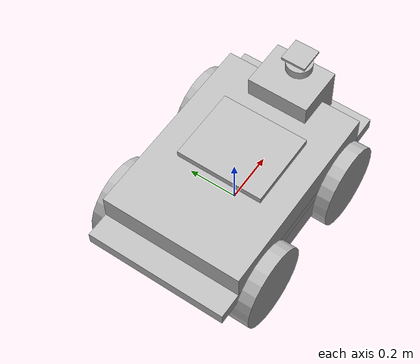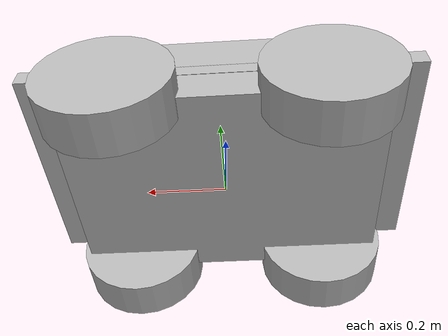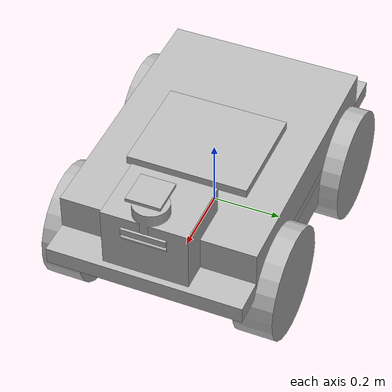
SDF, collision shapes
<?xml version='1.0' encoding='utf-8'?>
<sdf version="1.6">
  <model name="marble_husky_pan_tilt">
    <link name="base_link">
      <pose frame="">0 0 0 0 -0 0</pose>
      <inertial>
        <pose frame="">-0.000543 -0.084945 0.062329 0 -0 0</pose>
        <mass>46.064</mass>
        <inertia>
          <ixx>0.615397</ixx>
          <ixy>-0.0240585</ixy>
          <ixz>-0.120749</ixz>
          <iyy>1.75388</iyy>
          <iyz>-0.0028322</iyz>
          <izz>2.03641</izz>
        </inertia>
      </inertial>
      <collision name="base_link_collision">
        <pose frame="">0 0 0.12 0 0 0</pose>
        <geometry>
          <box>
            <size>0.9874 0.5709 0.05</size>
          </box>
        </geometry>
      </collision>
      <collision name="base_link_collision_bottom">
        <pose frame="">0 0 0.046 0 0 0</pose>
        <geometry>
          <box>
            <size>0.80 0.5709 0.095</size>
          </box>
        </geometry>
      </collision>
      <collision name="base_link_collision_1">
        <pose frame="">0 0 0.185625 0 -0 0</pose>
        <geometry>
          <box>
            <size>0.78992 0.5709 0.12375</size>
          </box>
        </geometry>
      </collision>
      <collision name="base_link_fixed_joint_lump__camera/camera_link_collision_1">
        <pose frame="pan_gimbal_link">0 0 0.05 0 0.0 0</pose>
        <geometry>
          <box>
            <size>0.0078 0.13 0.0192</size>
          </box>
        </geometry>
        <surface>
          <contact>
            <ode>
              <kp>1e+13</kp>
              <kd>1</kd>
            </ode>
          </contact>
          <friction>
            <ode>
              <mu2>1</mu2>
              <fdir1>0 0 0</fdir1>
            </ode>
          </friction>
        </surface>
      </collision>
      <collision name="base_link_fixed_joint_lump__camera/camera_link_collision_2">
        <pose frame="">0.478 0 0.285 0 -0 0</pose>
        <geometry>
          <box>
            <size>0.0078 0.13 0.0192</size>
          </box>
        </geometry>
        <surface>
          <contact>
            <ode>
              <kp>1e+13</kp>
              <kd>1</kd>
            </ode>
          </contact>
          <friction>
            <ode>
              <mu2>1</mu2>
              <fdir1>0 0 0</fdir1>
            </ode>
          </friction>
        </surface>
      </collision>
      <collision name="base_link_fixed_joint_lump__camera/camera_link_collision_3">
        <pose frame="">0.473 0 0.260 0 0.5236 0</pose>
        <geometry>
          <box>
            <size>0.0078 0.13 0.0192</size>
          </box>
        </geometry>
        <surface>
          <contact>
            <ode>
              <kp>1e+13</kp>
              <kd>1</kd>
            </ode>
          </contact>
          <friction>
            <ode>
              <mu2>1</mu2>
              <fdir1>0 0 0</fdir1>
            </ode>
          </friction>
        </surface>
      </collision>
      <collision name="base_link_fixed_joint_lump__velodyne_base_link_collision_6">
        <pose frame="">0.424 0 0.327 0 -0 0</pose>
        <geometry>
          <cylinder>
            <length>0.0717</length>
            <radius>0.0516</radius>
          </cylinder>
        </geometry>
      </collision>
      <collision name="base_link_fixed_joint_lump__velodyne_gimbal_plate_base_link_collision_7">
        <pose frame="">0.424 0 0.400 0 -0 0</pose>
        <geometry>
          <box>
            <size>0.1 0.1 0.01</size>
          </box>
        </geometry>
      </collision>
      <collision name="base_link_fixed_joint_lump__sensor_tower_8">
       <pose frame="">0.374 0 0.215 0 -0 0</pose>
        <geometry>
          <box>
            <size>0.2 0.25 0.225</size>
          </box>
        </geometry>
      </collision>
      <collision name="base_link_fixed_joint_lump__computer_block_9">
       <pose frame="">0.050 0 0.185 0 -0 0</pose>
        <geometry>
          <box>
            <size>0.30 0.355 0.175</size>
          </box>
        </geometry>
      </collision>
      <visual name="base_link_visual">
        <pose frame="">0 0 0 0 -0 0</pose>
        <geometry>
          <mesh>
            <scale>1 1 1</scale>
            <uri>meshes/base_link.dae</uri>
          </mesh>
        </geometry>
      </visual>
      <visual name="base_link_fixed_joint_lump__camera/camera_link_visual_1">
        <pose frame="">0.478 0 0.260 0 0.5236 0</pose>
        <geometry>
          <mesh>
            <uri>meshes/realsense.dae</uri>
          </mesh>
        </geometry>
      </visual>
      <visual name="base_link_fixed_joint_lump__camera/camera_link_visual_2">
        <pose frame="">0.478 0 0.285 0 -0 0</pose>
        <geometry>
          <mesh>
            <uri>meshes/realsense.dae</uri>
          </mesh>
        </geometry>
      </visual>
      <visual name="base_link_fixed_joint_lump__front_bumper_link_visual_3">
        <pose frame="">0.48 0 0.091 0 -0 0</pose>
        <geometry>
          <mesh>
            <scale>1 1 1</scale>
            <uri>meshes/bumper.dae</uri>
          </mesh>
        </geometry>
      </visual>
      <visual name="base_link_fixed_joint_lump__rear_bumper_link_visual_4">
        <pose frame="">-0.48 0 0.091 0 -0 3.14159</pose>
        <geometry>
          <mesh>
            <scale>1 1 1</scale>
            <uri>meshes/bumper.dae</uri>
          </mesh>
        </geometry>
      </visual>
      <visual name="base_link_fixed_joint_lump__top_chassis_link_visual_5">
        <pose frame="">0 0 0 0 -0 0</pose>
        <geometry>
          <mesh>
            <scale>1 1 1</scale>
            <uri>meshes/top_chassis.dae</uri>
          </mesh>
        </geometry>
      </visual>
      <!-- Bottom cylinder of Ouster/Velodyne 3D Lidar -->
      <visual name="base_link_fixed_joint_lump__velodyne_base_link_visual_10">
        <pose frame="">0.424 0 0.327 0 -0 0</pose>
        <geometry>
          <mesh>
            <scale>1 1 1</scale>
            <uri>meshes/VLP16_base_1.dae</uri>
          </mesh>
        </geometry>
      </visual>
      <!-- Top cylinder of Ouster/Velodyne 3D Lidar -->
      <visual name="base_link_fixed_joint_lump__velodyne_base_link_visual_11">
        <pose frame="">0.424 0 0.327 0 -0 0</pose>
        <geometry>
          <mesh>
            <scale>1 1 1</scale>
            <uri>meshes/VLP16_base_2.dae</uri>
          </mesh>
        </geometry>
      </visual>
      <!-- Main cylinder of Ouster/Velodyne 3D Lidar -->
      <visual name="base_link_fixed_joint_lump__velodyne_visual_12">
        <pose frame="">0.424 0 0.327 0 -0 0</pose>
        <geometry>
          <mesh>
            <scale>1 1 1</scale>
            <uri>meshes/VLP16_scan.dae</uri>
          </mesh>
        </geometry>
      </visual>
      <!-- Rail on top of husky -->
      <visual name="base_link_fixed_joint_lump__user_rail_link_visual_13">
        <pose frame="">0.272 0 0.245 0 -0 0</pose>
        <geometry>
          <mesh>
            <scale>1 1 1</scale>
            <uri>meshes/user_rail.dae</uri>
          </mesh>
        </geometry>
      </visual>
      <!-- 2D planar lidar at bottom of sensor suite -->
      <visual name="base_link_fixed_joint_lump__planar_lidar_link_visual_14">
        <pose frame="">0.474 0 0.127 0 -0 0</pose>
        <geometry>
          <cylinder>
              <radius>0.045</radius>
              <length>0.05</length>
          </cylinder>
        </geometry>
      </visual>
      <visual name="base_link_fixed_joint_lump__sensor_tower_16">
       <pose frame="">0.374 0 0.215 0 -0 0</pose>
        <geometry>
          <box>
            <size>0.2 0.25 0.225</size>
          </box>
        </geometry>
      </visual>
      <visual name="base_link_fixed_joint_lump__computer_block_17">
       <pose frame="">0.050 0 0.185 0 -0 0</pose>
        <geometry>
          <box>
            <size>0.30 0.355 0.175</size>
          </box>
        </geometry>
      </visual>

      <velocity_decay/>
      <self_collide>0</self_collide>
      <enable_wind>0</enable_wind>
      <kinematic>0</kinematic>
      <!-- Based on Intel realsense D435 (intrinsics and distortion not modeled)-->
      <sensor name="camera_front" type="rgbd_camera">
        <camera name="camera_front">
            <horizontal_fov>1.5184</horizontal_fov>
            <lens>
                <intrinsics>
                    <!-- fx = fy = width / ( 2 * tan (hfov / 2 ) ) -->
                    <fx>168.61097</fx>
                    <fy>168.61097</fy>
                    <!-- cx = ( width + 1 ) / 2 -->
                    <cx>160.5</cx>
                    <!-- cy = ( height + 1 ) / 2 -->
                    <cy>120.5</cy>
                    <s>0</s>
                </intrinsics>
            </lens>
            <distortion>
                <k1>0.0</k1>
                <k2>0.0</k2>
                <k3>0.0</k3>
                <p1>0.0</p1>
                <p2>0.0</p2>
                <center>0.5 0.5</center>
            </distortion>
            <image>
                <width>320</width>
                <height>240</height>
                <format>R8G8B8</format>
            </image>
            <clip>
                <near>0.01</near>
                <far>300</far>
            </clip>
            <depth_camera>
              <clip>
                <near>0.1</near>
                <far>10</far>
              </clip>
            </depth_camera>
            <noise>
                <type>gaussian</type>
                <mean>0</mean>
                <stddev>0.007</stddev>
            </noise>
        </camera>
        <always_on>1</always_on>
        <update_rate>1</update_rate>
        <visualize>0</visualize>
        <pose frame="">0.468 0 0.360 0 -0 0</pose>
      </sensor>
      <gravity>1</gravity>
      <velocity_decay/>
      <!-- Based on Intel realsense D435 (intrinsics and distortion not modeled)-->
      <sensor name="camera_down" type="rgbd_camera">
        <camera name="camera_down">
            <horizontal_fov>1.5184</horizontal_fov>
            <lens>
                <intrinsics>
                    <!-- fx = fy = width / ( 2 * tan (hfov / 2 ) ) -->
                    <fx>168.61097</fx>
                    <fy>168.61097</fy>
                    <!-- cx = ( width + 1 ) / 2 -->
                    <cx>160.5</cx>
                    <!-- cy = ( height + 1 ) / 2 -->
                    <cy>120.5</cy>
                    <s>0</s>
                </intrinsics>
            </lens>
            <distortion>
                <k1>0.0</k1>
                <k2>0.0</k2>
                <k3>0.0</k3>
                <p1>0.0</p1>
                <p2>0.0</p2>
                <center>0.5 0.5</center>
            </distortion>
            <image>
                <width>320</width>
                <height>240</height>
                <format>R8G8B8</format>
            </image>
            <clip>
                <near>0.01</near>
                <far>300</far>
            </clip>
            <depth_camera>
              <clip>
                <near>0.1</near>
                <far>10</far>
              </clip>
            </depth_camera>
            <noise>
                <type>gaussian</type>
                <mean>0</mean>
                <stddev>0.007</stddev>
            </noise>
        </camera>
        <always_on>1</always_on>
        <update_rate>1</update_rate>
        <visualize>0</visualize>
        <pose frame="">0.468 0 0.335 0 0.5236 0</pose>
      </sensor>
      <gravity>1</gravity>
      <velocity_decay/>
      <!-- Based on RPLidar S1 -->
      <sensor name="planar_laser" type="gpu_ray">
          <pose>0.474 0 0.127 0 -0 0</pose>
          <update_rate>10</update_rate>
          <lidar>
              <scan>
                  <horizontal>
                      <samples>920</samples>
                      <resolution>1</resolution>
                      <min_angle>-3.14159</min_angle>
                      <max_angle>3.14159</max_angle>
                  </horizontal>
              </scan>
              <range>
                  <min>0.04</min>
                  <max>25</max>
                  <resolution>0.03</resolution>
              </range>
              <noise>
                  <type>gaussian</type>
                  <mean>0</mean>
                  <stddev>0.01</stddev>
              </noise>
          </lidar>
      </sensor>
      <gravity>1</gravity>
      <velocity_decay/>

      <!-- OS1-64 3D Laser Configuration (10x2048 or 10x1024 or 20x1024 or 20x512 as possible (rate) x (hor. res.) configs)-->
      <sensor name="front_laser" type="gpu_lidar">
        <visualize>0</visualize>
        <update_rate>20</update_rate>
        <lidar>
          <scan>
            <horizontal>
              <!-- Resolution can't be above 16k, see
              https://bitbucket.org/ignitionrobotics/ign-sensors/issues/8 -->
              <samples>1024</samples>
              <resolution>1</resolution>
              <min_angle>-3.1459</min_angle>
              <max_angle>3.1459</max_angle>
            </horizontal>
            <vertical>
              <samples>64</samples>
              <resolution>1</resolution>
              <min_angle>-0.2897</min_angle>
              <max_angle>0.2897</max_angle>
            </vertical>
          </scan>
          <range>
            <min>0.8</min>
            <max>120</max>
            <resolution>0.003</resolution>
          </range>
          <noise>
            <type>gaussian</type>
            <mean>0</mean>
            <stddev>0.03</stddev>
          </noise>
        </lidar>
        <pose frame="">0.424 0 0.387 0 -0 0</pose>
      </sensor>

      <!--Ground Truth Lidar-->
      <sensor name="front_laser_truth" type="gpu_lidar">
        <visualize>0</visualize>
        <update_rate>20</update_rate>
        <lidar>
          <scan>
            <horizontal>
              <!-- Resolution can't be above 16k, see
              https://bitbucket.org/ignitionrobotics/ign-sensors/issues/8 -->
              <samples>2048</samples>
              <resolution>1</resolution>
              <min_angle>-3.1459</min_angle>
              <max_angle>3.1459</max_angle>
            </horizontal>
            <vertical>
              <samples>256</samples>
              <resolution>1</resolution>
              <min_angle>-0.2897</min_angle>
              <max_angle>1.497</max_angle>
            </vertical>
          </scan>
          <range>
            <min>1</min>
            <max>120</max>
            <resolution>0.003</resolution>
          </range>
          <noise>
            <type>gaussian</type>
            <mean>0</mean>
            <stddev>0.00</stddev>
          </noise>
        </lidar>
        <pose frame="">0.424 0 0.387 0 -0 0</pose>
      </sensor>

      <sensor name="imu_sensor" type="imu">
        <always_on>1</always_on>
        <update_rate>50</update_rate>
        <imu>
          <angular_velocity>
            <x>
              <noise type="gaussian">
                <mean>0</mean>
                <stddev>2e-4</stddev>
                <bias_mean>0.0000075</bias_mean>
                <bias_stddev>0.0000008</bias_stddev>
                <dynamic_bias_stddev>0.0000004</dynamic_bias_stddev>
                <dynamic_bias_correlation_time>1000.0</dynamic_bias_correlation_time>
              </noise>
            </x>
            <y>
              <noise type="gaussian">
                <mean>0</mean>
                <stddev>2e-4</stddev>
                <bias_mean>0.0000075</bias_mean>
                <bias_stddev>0.0000008</bias_stddev>
                <dynamic_bias_stddev>0.0000004</dynamic_bias_stddev>
                <dynamic_bias_correlation_time>1000.0</dynamic_bias_correlation_time>
              </noise>
            </y>
            <z>
              <noise type="gaussian">
                <mean>0</mean>
                <stddev>2e-4</stddev>
                <bias_mean>0.0000075</bias_mean>
                <bias_stddev>0.0000008</bias_stddev>
                <dynamic_bias_stddev>0.0000004</dynamic_bias_stddev>
                <dynamic_bias_correlation_time>1000.0</dynamic_bias_correlation_time>
              </noise>
            </z>
          </angular_velocity>
          <linear_acceleration>
            <x>
              <noise type="gaussian">
                <mean>0</mean>
                <stddev>1e-2</stddev>
                <bias_mean>0.1</bias_mean>
                <bias_stddev>0.001</bias_stddev>
                <dynamic_bias_stddev>0.002</dynamic_bias_stddev>
                <dynamic_bias_correlation_time>300.0</dynamic_bias_correlation_time>
              </noise>
            </x>
            <y>
              <noise type="gaussian">
                <mean>0</mean>
                <stddev>1e-2</stddev>
                <bias_mean>0.1</bias_mean>
                <bias_stddev>0.001</bias_stddev>
                <dynamic_bias_stddev>0.002</dynamic_bias_stddev>
                <dynamic_bias_correlation_time>300.0</dynamic_bias_correlation_time>
              </noise>
            </y>
            <z>
              <noise type="gaussian">
                <mean>0</mean>
                <stddev>1e-2</stddev>
                <bias_mean>0.1</bias_mean>
                <bias_stddev>0.001</bias_stddev>
                <dynamic_bias_stddev>0.002</dynamic_bias_stddev>
                <dynamic_bias_correlation_time>300.0</dynamic_bias_correlation_time>
              </noise>
            </z>
          </linear_acceleration>
        </imu>
      </sensor>
    </link>
    <link name="front_left_wheel_link">
      <pose frame="">0.256 0.2854 0.03282 0 -0 0</pose>
      <inertial>
        <pose frame="">0 0 0 0 -0 0</pose>
        <mass>2.637</mass>
        <inertia>
          <ixx>0.02467</ixx>
          <ixy>0</ixy>
          <ixz>0</ixz>
          <iyy>0.04411</iyy>
          <iyz>0</iyz>
          <izz>0.02467</izz>
        </inertia>
      </inertial>
      <collision name="front_left_wheel_link_collision">
        <pose frame="">0 0 0 1.5707963267948966 -0 0</pose>
        <geometry>
          <cylinder>
            <length>0.1143</length>
            <radius>0.1651</radius>
          </cylinder>
        </geometry>
        <surface>
          <contact>
            <ode>
              <kp>1e+07</kp>
              <kd>1</kd>
            </ode>
          </contact>
          <friction>
            <ode>
              <mu>0.5</mu>
              <mu2>1</mu2>
              <slip1>0.00062</slip1>
              <slip2>0</slip2>
              <fdir1>0 0 1</fdir1>
            </ode>
          </friction>
        </surface>
      </collision>
      <visual name="front_left_wheel_link_visual">
        <pose frame="">0 0 0 0 -0 0</pose>
        <geometry>
          <mesh>
            <scale>1 1 1</scale>
            <uri>meshes/wheel.dae</uri>
          </mesh>
        </geometry>
      </visual>
      <gravity>1</gravity>
      <velocity_decay/>
    </link>
    <joint name="front_left_wheel_joint" type="revolute">
      <child>front_left_wheel_link</child>
      <parent>base_link</parent>
      <axis>
        <xyz>0 1 0</xyz>
        <limit>
          <lower>-1e+16</lower>
          <upper>1e+16</upper>
        </limit>
        <dynamics>
          <spring_reference>0</spring_reference>
          <spring_stiffness>0</spring_stiffness>
        </dynamics>
        <use_parent_model_frame>1</use_parent_model_frame>
      </axis>
    </joint>
    <link name="front_right_wheel_link">
      <pose frame="">0.256 -0.2854 0.03282 0 -0 0</pose>
      <inertial>
        <pose frame="">0 0 0 0 -0 0</pose>
        <mass>2.637</mass>
        <inertia>
          <ixx>0.02467</ixx>
          <ixy>0</ixy>
          <ixz>0</ixz>
          <iyy>0.04411</iyy>
          <iyz>0</iyz>
          <izz>0.02467</izz>
        </inertia>
      </inertial>
      <collision name="front_right_wheel_link_collision">
        <pose frame="">0 0 0 1.5707963267948966 -0 0</pose>
        <geometry>
          <cylinder>
            <length>0.1143</length>
            <radius>0.1651</radius>
          </cylinder>
        </geometry>
        <surface>
          <contact>
            <ode>
              <kp>1e+07</kp>
              <kd>1</kd>
            </ode>
          </contact>
          <friction>
            <ode>
              <mu>0.5</mu>
              <mu2>1</mu2>
              <slip1>0.00062</slip1>
              <slip2>0</slip2>
              <fdir1>0 0 1</fdir1>
            </ode>
          </friction>
        </surface>
      </collision>
      <visual name="front_right_wheel_link_visual">
        <pose frame="">0 0 0 0 -0 0</pose>
        <geometry>
          <mesh>
            <scale>1 1 1</scale>
            <uri>meshes/wheel.dae</uri>
          </mesh>
        </geometry>
      </visual>
      <gravity>1</gravity>
      <velocity_decay/>
    </link>
    <joint name="front_right_wheel_joint" type="revolute">
      <child>front_right_wheel_link</child>
      <parent>base_link</parent>
      <axis>
        <xyz>0 1 0</xyz>
        <limit>
          <lower>-1e+16</lower>
          <upper>1e+16</upper>
        </limit>
        <dynamics>
          <spring_reference>0</spring_reference>
          <spring_stiffness>0</spring_stiffness>
        </dynamics>
        <use_parent_model_frame>1</use_parent_model_frame>
      </axis>
    </joint>
    <link name="rear_left_wheel_link">
      <pose frame="">-0.256 0.2854 0.03282 0 -0 0</pose>
      <inertial>
        <pose frame="">0 0 0 0 -0 0</pose>
        <mass>2.637</mass>
        <inertia>
          <ixx>0.02467</ixx>
          <ixy>0</ixy>
          <ixz>0</ixz>
          <iyy>0.04411</iyy>
          <iyz>0</iyz>
          <izz>0.02467</izz>
        </inertia>
      </inertial>
      <collision name="rear_left_wheel_link_collision">
        <pose frame="">0 0 0 1.5707963267948966 -0 0</pose>
        <geometry>
          <cylinder>
            <length>0.1143</length>
            <radius>0.1651</radius>
          </cylinder>
        </geometry>
        <surface>
          <contact>
            <ode>
              <kp>1e+07</kp>
              <kd>1</kd>
            </ode>
          </contact>
          <friction>
            <ode>
              <mu>0.5</mu>
              <mu2>1</mu2>
              <slip1>0.00062</slip1>
              <slip2>0</slip2>
              <fdir1>0 0 1</fdir1>
            </ode>
          </friction>
        </surface>
      </collision>
      <visual name="rear_left_wheel_link_visual">
        <pose frame="">0 0 0 0 -0 0</pose>
        <geometry>
          <mesh>
            <scale>1 1 1</scale>
            <uri>meshes/wheel.dae</uri>
          </mesh>
        </geometry>
      </visual>
      <gravity>1</gravity>
      <velocity_decay/>
    </link>
    <joint name="rear_left_wheel_joint" type="revolute">
      <child>rear_left_wheel_link</child>
      <parent>base_link</parent>
      <axis>
        <xyz>0 1 0</xyz>
        <limit>
          <lower>-1e+16</lower>
          <upper>1e+16</upper>
        </limit>
        <dynamics>
          <spring_reference>0</spring_reference>
          <spring_stiffness>0</spring_stiffness>
        </dynamics>
        <use_parent_model_frame>1</use_parent_model_frame>
      </axis>
    </joint>
    <link name="rear_right_wheel_link">
      <pose frame="">-0.256 -0.2854 0.03282 0 -0 0</pose>
      <inertial>
        <pose frame="">0 0 0 0 -0 0</pose>
        <mass>2.637</mass>
        <inertia>
          <ixx>0.02467</ixx>
          <ixy>0</ixy>
          <ixz>0</ixz>
          <iyy>0.04411</iyy>
          <iyz>0</iyz>
          <izz>0.02467</izz>
        </inertia>
      </inertial>
      <collision name="rear_right_wheel_link_collision">
        <pose frame="">0 0 0 1.5707963267948966 -0 0</pose>
        <geometry>
          <cylinder>
            <length>0.1143</length>
            <radius>0.1651</radius>
          </cylinder>
        </geometry>
        <surface>
          <contact>
            <ode>
              <kp>1e+07</kp>
              <kd>1</kd>
            </ode>
          </contact>
          <friction>
            <ode>
              <mu>0.5</mu>
              <mu2>1</mu2>
              <slip1>0.00062</slip1>
              <slip2>0</slip2>
              <fdir1>0 0 1</fdir1>
            </ode>
          </friction>
        </surface>
      </collision>
      <visual name="rear_right_wheel_link_visual">
        <pose frame="">0 0 0 0 -0 0</pose>
        <geometry>
          <mesh>
            <scale>1 1 1</scale>
            <uri>meshes/wheel.dae</uri>
          </mesh>
        </geometry>
      </visual>
      <gravity>1</gravity>
      <velocity_decay/>
    </link>
    <joint name="rear_right_wheel_joint" type="revolute">
      <child>rear_right_wheel_link</child>
      <parent>base_link</parent>
      <axis>
        <xyz>0 1 0</xyz>
        <limit>
          <lower>-1e+16</lower>
          <upper>1e+16</upper>
        </limit>
        <dynamics>
          <spring_reference>0</spring_reference>
          <spring_stiffness>0</spring_stiffness>
        </dynamics>
        <use_parent_model_frame>1</use_parent_model_frame>
      </axis>
    </joint>
    <link name="pan_gimbal_link">
      <pose frame="">0.424 0 0.427 0 -0 0</pose>
      <inertial>
        <pose frame="">0 0 0 0 -0 0</pose>
        <mass>0.1</mass>
        <inertia>
          <ixx>0.000016875</ixx>
          <ixy>0</ixy>
          <ixz>0</ixz>
          <iyy>0.00000001</iyy>
          <iyz>0</iyz>
          <izz>0.000016875</izz>
        </inertia>
      </inertial>
    </link>
    <link name="tilt_gimbal_link">
      <pose frame="">0.424 0 0.460 0 -0 0</pose>
      <inertial>
        <pose frame="">0 0 0 1.570796 -0 0</pose>
        <mass>0.1</mass>
         <inertia>
          <ixx>0.000016875</ixx>
          <ixy>0</ixy>
          <ixz>0</ixz>
          <iyy>0.00000001</iyy>
          <iyz>0</iyz>
          <izz>0.000016875</izz>
        </inertia>
      </inertial>
      <!-- Based on Intel realsense D435 (intrinsics and distortion not modeled)-->
      <sensor name="camera_pan_tilt" type="rgbd_camera">
        <camera name="camera_pan_tilt">
            <horizontal_fov>1.74533</horizontal_fov>
            <lens>
                <intrinsics>
                    <!-- fx = fy = width / ( 2 * tan (hfov / 2 ) ) -->
                    <fx>209.75369</fx>
                    <fy>209.75369</fy>
                    <!-- cx = ( width + 1 ) / 2 -->
                    <cx>176.7779</cx>
                    <!-- cy = ( height + 1 ) / 2 -->
                    <cy>147.824203</cy>
                    <s>0</s>
                </intrinsics>
            </lens>
            <distortion>
                <k1>-0.32094</k1>
                <k2>0.008704</k2>
                <k3>-0.009904</k3>
                <p1>-0.000535447</p1>
                <p2>-0.000149773</p2>
                <center>0.5 0.5</center>
            </distortion>
            <image>
                <width>287</width>
                <height>352</height>
                <format>R8G8B8</format>
            </image>
            <clip>
                <near>0.01</near>
                <far>300</far>
            </clip>
            <depth_camera>
              <clip>
                <near>0.5</near>
                <far>6</far>
              </clip>
            </depth_camera>
            <noise>
                <type>gaussian</type>
                <mean>0</mean>
                <stddev>0.007</stddev>
            </noise>
        </camera>
        <always_on>1</always_on>
        <update_rate>5</update_rate>
        <visualize>0</visualize>

        <pose frame="">0.0 0 0.03 0 0.0 0</pose>
      </sensor>
      <gravity>1</gravity>
      <velocity_decay/>
      <light name="flashlight_flashlight_light_source_lamp_light" type="spot">
        <pose frame="">0.0 0.0 0.065 3.141592653589793 1.5707963267948966 -0.0015926535897931</pose>
        <attenuation>
          <range>50</range>
          <linear>0</linear>
          <constant>0.1</constant>
          <quadratic>0.0025</quadratic>
        </attenuation>
        <diffuse>0.8 0.8 0.5 1</diffuse>
        <specular>0.8 0.8 0.5 1</specular>
        <spot>
          <!-- The lights on the MARBLE ground vehicles are very wide angle, 100W LEDs -->
          <inner_angle>2.8</inner_angle>
          <outer_angle>2.9</outer_angle>
          <falloff>1</falloff>
        </spot>
        <direction>0 0 -1</direction>
      </light>
    </link>
    <joint name="pan_gimbal_joint" type="revolute">
      <child>pan_gimbal_link</child>
      <parent>base_link</parent>
      <axis>
        <xyz>0 0 1</xyz>
        <limit>
          <lower>-2.4</lower>
          <upper>2.4</upper>
          <effort>10</effort>
        </limit>
        <dynamics>
          <spring_reference>0</spring_reference>
          <spring_stiffness>0</spring_stiffness>
          <damping>0.5</damping>
        </dynamics>
        <use_parent_model_frame>1</use_parent_model_frame>
      </axis>
    </joint>
    <joint name="tilt_gimbal_joint" type="revolute">
      <child>tilt_gimbal_link</child>
      <parent>pan_gimbal_link</parent>
      <axis>
        <xyz>0 -1 0</xyz>
        <limit>
          <lower>-1.5708</lower> <!-- 90 degrees both direction (mechanical interference)-->
          <upper>1.5708</upper>
          <effort>10</effort>
        </limit>
        <dynamics>
          <spring_reference>0</spring_reference>
          <spring_stiffness>0</spring_stiffness>
          <damping>0.5</damping>
        </dynamics>
        <use_parent_model_frame>1</use_parent_model_frame>
      </axis>
    </joint>

    <!--Multiple Pan Tilt-->
    <link name="pan_gimbal_rl_link">
      <pose frame="">0.424 0 0.427 0 -0 0</pose>
      <inertial>
        <pose frame="">0 0 0 0 -0 0</pose>
        <mass>0.1</mass>
        <inertia>
          <ixx>0.000016875</ixx>
          <ixy>0</ixy>
          <ixz>0</ixz>
          <iyy>0.00000001</iyy>
          <iyz>0</iyz>
          <izz>0.000016875</izz>
        </inertia>
      </inertial>
    </link>
    <link name="tilt_gimbal_rl_link">
      <pose frame="">0.424 0 0.460 0 -0 0</pose>
      <inertial>
        <pose frame="">0 0 0 1.570796 -0 0</pose>
        <mass>0.1</mass>
         <inertia>
          <ixx>0.000016875</ixx>
          <ixy>0</ixy>
          <ixz>0</ixz>
          <iyy>0.00000001</iyy>
          <iyz>0</iyz>
          <izz>0.000016875</izz>
        </inertia>
      </inertial>
      <!-- Based on Intel realsense D435 (intrinsics and distortion not modeled)-->
      <sensor name="camera_pan_tilt_rl" type="rgbd_camera">
        <camera name="camera_pan_tilt_rl">
            <horizontal_fov>1.74533</horizontal_fov>
            <lens>
                <intrinsics>
                    <!-- fx = fy = width / ( 2 * tan (hfov / 2 ) ) -->
                    <fx>209.75369</fx>
                    <fy>209.75369</fy>
                    <!-- cx = ( width + 1 ) / 2 -->
                    <cx>176.7779</cx>
                    <!-- cy = ( height + 1 ) / 2 -->
                    <cy>147.824203</cy>
                    <s>0</s>
                </intrinsics>
            </lens>
            <distortion>
                <k1>-0.32094</k1>
                <k2>0.008704</k2>
                <k3>-0.009904</k3>
                <p1>-0.000535447</p1>
                <p2>-0.000149773</p2>
                <center>0.5 0.5</center>
            </distortion>
            <image>
                <width>287</width>
                <height>352</height>
                <format>R8G8B8</format>
            </image>
            <clip>
                <near>0.01</near>
                <far>300</far>
            </clip>
            <depth_camera>
              <clip>
                <near>0.5</near>
                <far>6</far>
              </clip>
            </depth_camera>
            <noise>
                <type>gaussian</type>
                <mean>0</mean>
                <stddev>0.007</stddev>
            </noise>
        </camera>
        <always_on>1</always_on>
        <update_rate>5</update_rate>
        <visualize>0</visualize>

        <pose frame="">0.0 0 0.03 0 0.0 0</pose>
      </sensor>
      <gravity>1</gravity>
      <velocity_decay/>
    </link>

    <joint name="pan_gimbal_rl_joint" type="revolute">
      <child>pan_gimbal_rl_link</child>
      <parent>base_link</parent>
      <axis>
        <xyz>0 0 1</xyz>
        <limit>
          <lower>-2.4</lower>
          <upper>2.4</upper>
          <effort>10</effort>
        </limit>
        <dynamics>
          <spring_reference>0</spring_reference>
          <spring_stiffness>0</spring_stiffness>
          <damping>0.5</damping>
        </dynamics>
        <use_parent_model_frame>1</use_parent_model_frame>
      </axis>
    </joint>
    <joint name="tilt_gimbal_rl_joint" type="revolute">
      <child>tilt_gimbal_rl_link</child>
      <parent>pan_gimbal_rl_link</parent>
      <axis>
        <xyz>0 -1 0</xyz>
        <limit>
          <lower>-1.5708</lower> <!-- 90 degrees both direction (mechanical interference)-->
          <upper>1.5708</upper>
          <effort>10</effort>
        </limit>
        <dynamics>
          <spring_reference>0</spring_reference>
          <spring_stiffness>0</spring_stiffness>
          <damping>0.5</damping>
        </dynamics>
        <use_parent_model_frame>1</use_parent_model_frame>
      </axis>
    </joint>

    <!--Multiple Pan Tilt-->
    <link name="pan_gimbal_sp_link">
      <pose frame="">0.424 0 0.427 0 -0 0</pose>
      <inertial>
        <pose frame="">0 0 0 0 -0 0</pose>
        <mass>0.1</mass>
        <inertia>
          <ixx>0.000016875</ixx>
          <ixy>0</ixy>
          <ixz>0</ixz>
          <iyy>0.00000001</iyy>
          <iyz>0</iyz>
          <izz>0.000016875</izz>
        </inertia>
      </inertial>
    </link>
    <link name="tilt_gimbal_sp_link">
      <pose frame="">0.424 0 0.460 0 -0 0</pose>
      <inertial>
        <pose frame="">0 0 0 1.570796 -0 0</pose>
        <mass>0.1</mass>
         <inertia>
          <ixx>0.000016875</ixx>
          <ixy>0</ixy>
          <ixz>0</ixz>
          <iyy>0.00000001</iyy>
          <iyz>0</iyz>
          <izz>0.000016875</izz>
        </inertia>
      </inertial>
      <!-- Based on Intel realsense D435 (intrinsics and distortion not modeled)-->
      <sensor name="camera_pan_tilt_sp" type="rgbd_camera">
        <camera name="camera_pan_tilt_sp">
            <horizontal_fov>1.74533</horizontal_fov>
            <lens>
                <intrinsics>
                    <!-- fx = fy = width / ( 2 * tan (hfov / 2 ) ) -->
                    <fx>209.75369</fx>
                    <fy>209.75369</fy>
                    <!-- cx = ( width + 1 ) / 2 -->
                    <cx>176.7779</cx>
                    <!-- cy = ( height + 1 ) / 2 -->
                    <cy>147.824203</cy>
                    <s>0</s>
                </intrinsics>
            </lens>
            <distortion>
                <k1>-0.32094</k1>
                <k2>0.008704</k2>
                <k3>-0.009904</k3>
                <p1>-0.000535447</p1>
                <p2>-0.000149773</p2>
                <center>0.5 0.5</center>
            </distortion>
            <image>
                <width>287</width>
                <height>352</height>
                <format>R8G8B8</format>
            </image>
            <clip>
                <near>0.01</near>
                <far>300</far>
            </clip>
            <depth_camera>
              <clip>
                <near>0.5</near>
                <far>6</far>
              </clip>
            </depth_camera>
            <noise>
                <type>gaussian</type>
                <mean>0</mean>
                <stddev>0.007</stddev>
            </noise>
        </camera>
        <always_on>1</always_on>
        <update_rate>5</update_rate>
        <visualize>0</visualize>

        <pose frame="">0.0 0 0.03 0 0.0 0</pose>
      </sensor>
      <gravity>1</gravity>
      <velocity_decay/>
    </link>

    <joint name="pan_gimbal_sp_joint" type="revolute">
      <child>pan_gimbal_sp_link</child>
      <parent>base_link</parent>
      <axis>
        <xyz>0 0 1</xyz>
        <limit>
          <lower>-2.4</lower>
          <upper>2.4</upper>
          <effort>10</effort>
        </limit>
        <dynamics>
          <spring_reference>0</spring_reference>
          <spring_stiffness>0</spring_stiffness>
          <damping>0.5</damping>
        </dynamics>
        <use_parent_model_frame>1</use_parent_model_frame>
      </axis>
    </joint>
    <joint name="tilt_gimbal_sp_joint" type="revolute">
      <child>tilt_gimbal_sp_link</child>
      <parent>pan_gimbal_sp_link</parent>
      <axis>
        <xyz>0 -1 0</xyz>
        <limit>
          <lower>-1.5708</lower> <!-- 90 degrees both direction (mechanical interference)-->
          <upper>1.5708</upper>
          <effort>10</effort>
        </limit>
        <dynamics>
          <spring_reference>0</spring_reference>
          <spring_stiffness>0</spring_stiffness>
          <damping>0.5</damping>
        </dynamics>
        <use_parent_model_frame>1</use_parent_model_frame>
      </axis>
    </joint>

    <!--Single Pan Tilt-->
    <plugin
      filename="libignition-gazebo-joint-position-controller-system.so"
      name="ignition::gazebo::systems::JointPositionController  ">
      <joint_name>pan_gimbal_joint</joint_name>
      <p_gain>5</p_gain>
    </plugin>
    <plugin
      filename="libignition-gazebo-joint-position-controller-system.so"
      name="ignition::gazebo::systems::JointPositionController">
      <joint_name>tilt_gimbal_joint</joint_name>
      <p_gain>5</p_gain>
    </plugin>
    <plugin
      filename="libignition-gazebo-joint-state-publisher-system.so"
      name="ignition::gazebo::systems::JointStatePublisher">
      <joint_name>pan_gimbal_joint</joint_name>
      <joint_name>tilt_gimbal_joint</joint_name>
    </plugin>

<!--Multiple Pan Tilt-->
<plugin
  filename="libignition-gazebo-joint-position-controller-system.so"
  name="ignition::gazebo::systems::JointPositionController  ">
  <joint_name>pan_gimbal_rl_joint</joint_name>
  <p_gain>5</p_gain>
</plugin>
<plugin
  filename="libignition-gazebo-joint-position-controller-system.so"
  name="ignition::gazebo::systems::JointPositionController">
  <joint_name>tilt_gimbal_rl_joint</joint_name>
  <p_gain>5</p_gain>
</plugin>
<plugin
  filename="libignition-gazebo-joint-state-publisher-system.so"
  name="ignition::gazebo::systems::JointStatePublisher">
  <joint_name>pan_gimbal_rl_joint</joint_name>
  <joint_name>tilt_gimbal_rl_joint</joint_name>
</plugin>

<plugin
  filename="libignition-gazebo-joint-position-controller-system.so"
  name="ignition::gazebo::systems::JointPositionController  ">
  <joint_name>pan_gimbal_sp_joint</joint_name>
  <p_gain>5</p_gain>
</plugin>
<plugin
  filename="libignition-gazebo-joint-position-controller-system.so"
  name="ignition::gazebo::systems::JointPositionController">
  <joint_name>tilt_gimbal_sp_joint</joint_name>
  <p_gain>5</p_gain>
</plugin>
<plugin
  filename="libignition-gazebo-joint-state-publisher-system.so"
  name="ignition::gazebo::systems::JointStatePublisher">
  <joint_name>pan_gimbal_sp_joint</joint_name>
  <joint_name>tilt_gimbal_sp_joint</joint_name>
</plugin>

    <static>0</static>
  </model>
</sdf>
